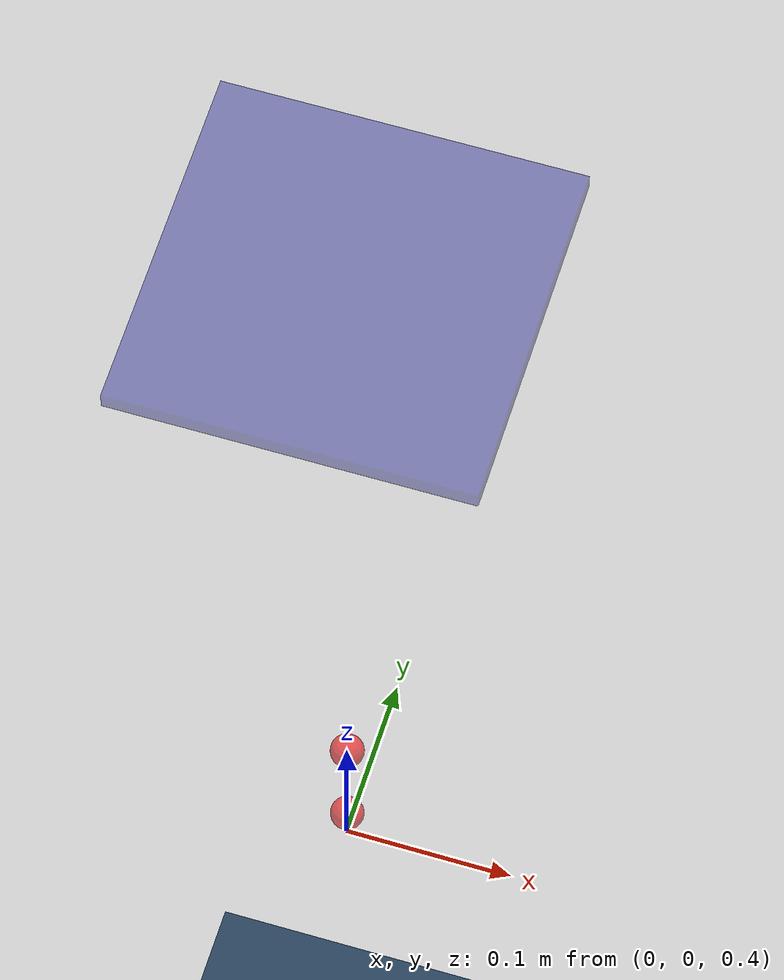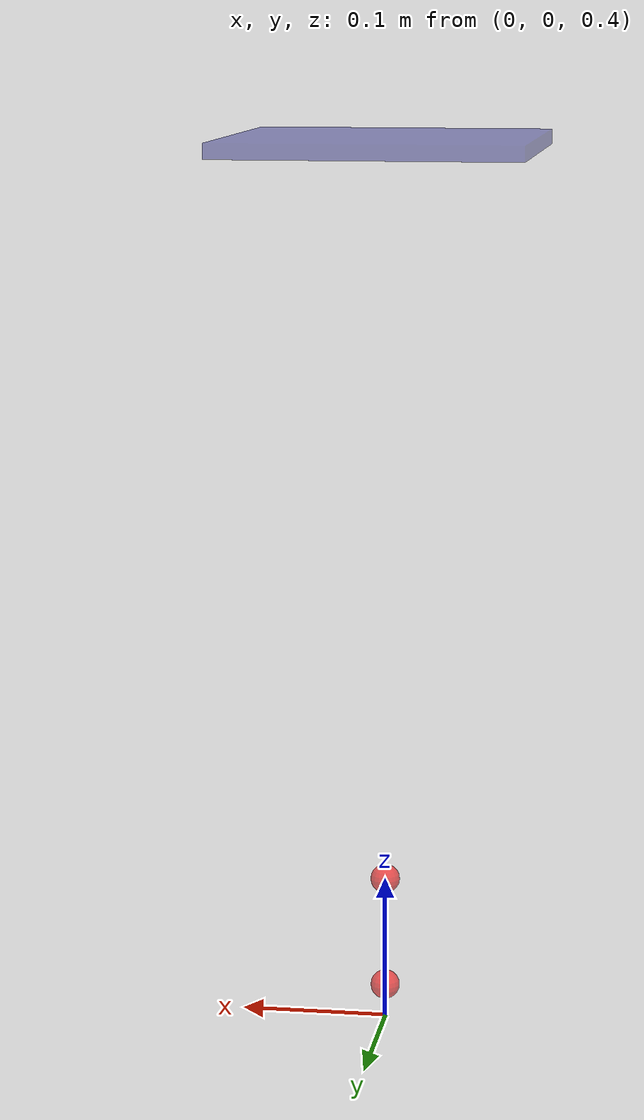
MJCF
<!-- 单驱动器简化模型 -->

<mujoco model="v2_4">
  <compiler angle="radian"/>
  <option timestep="0.0005" iterations="1000"/>

  <default>
    <geom density="418"/>
  </default>

  <asset>
    <texture name="grid" type="2d" builtin="checker" rgb1=".1 .2 .3"
      rgb2=".2 .3 .4" width="300" height="300"/>
    <material name="grid" texture="grid" texrepeat="8 8" reflectance=".2"/>
  </asset>

  <worldbody>
    <light name="top" pos="0 0 5"/>
    <geom size="10 10 .01" type="plane" material="grid" friction="1 0.005 0.0001"/>
    <camera name="fixed" pos="0 -1.3 1.2" xyaxes="1 0 0 0 1 2"/>

    <body name="base" pos="0 0 1">
      <geom type="box" size="0.1 0.1 0.005" rgba="0 0 0.5 0.4" mass="0.03091666667"/>

        <body name="RB_MAA_FM_Link" pos="0 0 -0.5">
            <joint name="RB_MAA_SlideJoint" pos="0 0 0" axis="0 0 -1" type="slide" damping="22" stiffness="740" springref="0"/>
            <geom type="sphere" size="0.01" rgba="1 0 0 0.6" mass="0.1236666667"/>

            <body name="RB_MAA_LOLink" pos="0 0 -0.077">
                <joint name="RB_MAA_FM_SlideJoint" pos="0 0 0" axis="0 0 -1" type="slide" damping="22" stiffness="740" springref="0"/>
                <geom type="sphere" size="0.01" rgba="1 0 0 0.6" mass="0.3"/>
            </body>
        </body>
    </body>

  </worldbody>

  <!-- 增加在RB_BAA_LowerJoint等关节中加入8个位置控制器，要求增加位置限制 -->
  <actuator>
    <motor joint="RB_MAA_SlideJoint" ctrllimited="true" ctrlrange="-300 300" />
    <motor joint="RB_MAA_FM_SlideJoint" ctrllimited="true" ctrlrange="-300 300" />
  </actuator>

  <!-- 建立并联关系，如 RB_BAA_LOLink 应该与 RB_Calf 连接 -->
  <equality>
    <!-- FM 的相等约束 -->
    <joint name="RB_MAA_FM" joint1="RB_MAA_SlideJoint" joint2="RB_MAA_FM_SlideJoint" solimp="0.995 0.999 0.00001"/>
  </equality>

  <sensor>
  </sensor>

</mujoco>
